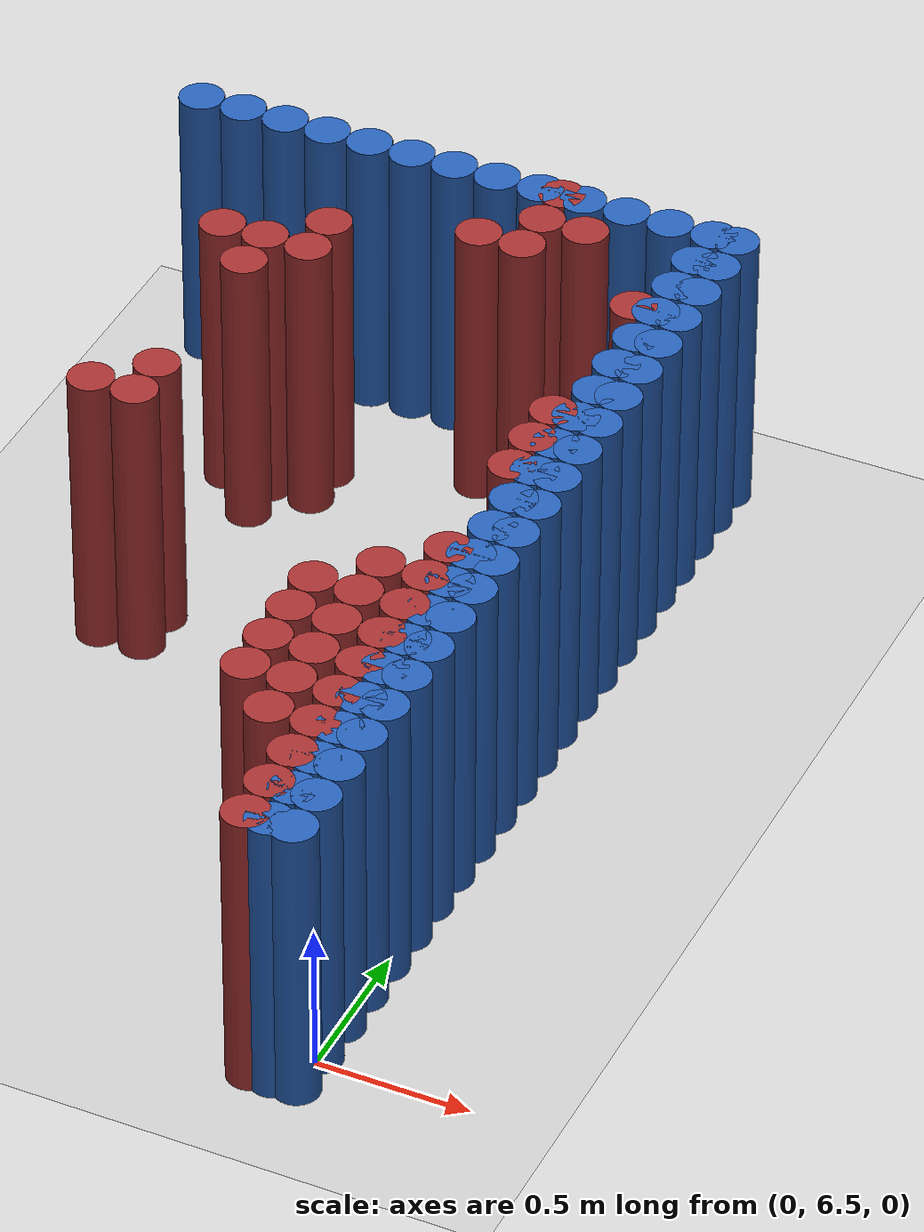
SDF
<sdf version="1.6">
 <world name="barn_world">
  <model name="ground_plane">
   <static>1</static>
   <link name="link">
    <collision name="collision">
     <geometry><plane><normal>0 0 1</normal><size>100 100</size></plane></geometry>
    </collision>
    <visual name="visual">
     <geometry><plane><normal>0 0 1</normal><size>100 100</size></plane></geometry>
     <material>
      <script><uri>file://media/materials/scripts/gazebo.material</uri><name>Gazebo/Grey</name></script>
     </material>
    </visual>
   </link>
  </model>
  <model name="unit_cylinder_215">
   <static>1</static>
   <pose>-1.5000 8.0250 0.5 0 0 0</pose>
   <link name="link">
    <collision name="collision">
     <geometry><cylinder><radius>0.075</radius><length>1</length></cylinder></geometry>
    </collision>
    <visual name="visual">
     <geometry><cylinder><radius>0.075</radius><length>1</length></cylinder></geometry>
     <material><ambient>0.648 0.192 0.192 1</ambient><diffuse>0.648 0.192 0.192 1</diffuse></material>
    </visual>
   </link>
  </model>
  <model name="unit_cylinder_216">
   <static>1</static>
   <pose>-1.5000 8.9250 0.5 0 0 0</pose>
   <link name="link">
    <collision name="collision">
     <geometry><cylinder><radius>0.075</radius><length>1</length></cylinder></geometry>
    </collision>
    <visual name="visual">
     <geometry><cylinder><radius>0.075</radius><length>1</length></cylinder></geometry>
     <material><ambient>0.648 0.192 0.192 1</ambient><diffuse>0.648 0.192 0.192 1</diffuse></material>
    </visual>
   </link>
  </model>
  <model name="unit_cylinder_217">
   <static>1</static>
   <pose>-1.3500 8.0250 0.5 0 0 0</pose>
   <link name="link">
    <collision name="collision">
     <geometry><cylinder><radius>0.075</radius><length>1</length></cylinder></geometry>
    </collision>
    <visual name="visual">
     <geometry><cylinder><radius>0.075</radius><length>1</length></cylinder></geometry>
     <material><ambient>0.648 0.192 0.192 1</ambient><diffuse>0.648 0.192 0.192 1</diffuse></material>
    </visual>
   </link>
  </model>
  <model name="unit_cylinder_218">
   <static>1</static>
   <pose>-1.3500 8.1750 0.5 0 0 0</pose>
   <link name="link">
    <collision name="collision">
     <geometry><cylinder><radius>0.075</radius><length>1</length></cylinder></geometry>
    </collision>
    <visual name="visual">
     <geometry><cylinder><radius>0.075</radius><length>1</length></cylinder></geometry>
     <material><ambient>0.648 0.192 0.192 1</ambient><diffuse>0.648 0.192 0.192 1</diffuse></material>
    </visual>
   </link>
  </model>
  <model name="unit_cylinder_219">
   <static>1</static>
   <pose>-1.3500 8.7750 0.5 0 0 0</pose>
   <link name="link">
    <collision name="collision">
     <geometry><cylinder><radius>0.075</radius><length>1</length></cylinder></geometry>
    </collision>
    <visual name="visual">
     <geometry><cylinder><radius>0.075</radius><length>1</length></cylinder></geometry>
     <material><ambient>0.648 0.192 0.192 1</ambient><diffuse>0.648 0.192 0.192 1</diffuse></material>
    </visual>
   </link>
  </model>
  <model name="unit_cylinder_220">
   <static>1</static>
   <pose>-1.3500 8.9250 0.5 0 0 0</pose>
   <link name="link">
    <collision name="collision">
     <geometry><cylinder><radius>0.075</radius><length>1</length></cylinder></geometry>
    </collision>
    <visual name="visual">
     <geometry><cylinder><radius>0.075</radius><length>1</length></cylinder></geometry>
     <material><ambient>0.648 0.192 0.192 1</ambient><diffuse>0.648 0.192 0.192 1</diffuse></material>
    </visual>
   </link>
  </model>
  <model name="unit_cylinder_221">
   <static>1</static>
   <pose>-1.2000 8.9250 0.5 0 0 0</pose>
   <link name="link">
    <collision name="collision">
     <geometry><cylinder><radius>0.075</radius><length>1</length></cylinder></geometry>
    </collision>
    <visual name="visual">
     <geometry><cylinder><radius>0.075</radius><length>1</length></cylinder></geometry>
     <material><ambient>0.648 0.192 0.192 1</ambient><diffuse>0.648 0.192 0.192 1</diffuse></material>
    </visual>
   </link>
  </model>
  <model name="unit_cylinder_222">
   <static>1</static>
   <pose>-1.2000 9.0750 0.5 0 0 0</pose>
   <link name="link">
    <collision name="collision">
     <geometry><cylinder><radius>0.075</radius><length>1</length></cylinder></geometry>
    </collision>
    <visual name="visual">
     <geometry><cylinder><radius>0.075</radius><length>1</length></cylinder></geometry>
     <material><ambient>0.648 0.192 0.192 1</ambient><diffuse>0.648 0.192 0.192 1</diffuse></material>
    </visual>
   </link>
  </model>
  <model name="unit_cylinder_223">
   <static>1</static>
   <pose>-0.7500 9.2250 0.5 0 0 0</pose>
   <link name="link">
    <collision name="collision">
     <geometry><cylinder><radius>0.075</radius><length>1</length></cylinder></geometry>
    </collision>
    <visual name="visual">
     <geometry><cylinder><radius>0.075</radius><length>1</length></cylinder></geometry>
     <material><ambient>0.648 0.192 0.192 1</ambient><diffuse>0.648 0.192 0.192 1</diffuse></material>
    </visual>
   </link>
  </model>
  <model name="unit_cylinder_224">
   <static>1</static>
   <pose>-0.6000 9.2250 0.5 0 0 0</pose>
   <link name="link">
    <collision name="collision">
     <geometry><cylinder><radius>0.075</radius><length>1</length></cylinder></geometry>
    </collision>
    <visual name="visual">
     <geometry><cylinder><radius>0.075</radius><length>1</length></cylinder></geometry>
     <material><ambient>0.648 0.192 0.192 1</ambient><diffuse>0.648 0.192 0.192 1</diffuse></material>
    </visual>
   </link>
  </model>
  <model name="unit_cylinder_225">
   <static>1</static>
   <pose>-0.6000 9.3750 0.5 0 0 0</pose>
   <link name="link">
    <collision name="collision">
     <geometry><cylinder><radius>0.075</radius><length>1</length></cylinder></geometry>
    </collision>
    <visual name="visual">
     <geometry><cylinder><radius>0.075</radius><length>1</length></cylinder></geometry>
     <material><ambient>0.648 0.192 0.192 1</ambient><diffuse>0.648 0.192 0.192 1</diffuse></material>
    </visual>
   </link>
  </model>
  <model name="unit_cylinder_226">
   <static>1</static>
   <pose>-0.6000 9.5250 0.5 0 0 0</pose>
   <link name="link">
    <collision name="collision">
     <geometry><cylinder><radius>0.075</radius><length>1</length></cylinder></geometry>
    </collision>
    <visual name="visual">
     <geometry><cylinder><radius>0.075</radius><length>1</length></cylinder></geometry>
     <material><ambient>0.648 0.192 0.192 1</ambient><diffuse>0.648 0.192 0.192 1</diffuse></material>
    </visual>
   </link>
  </model>
  <model name="unit_cylinder_227">
   <static>1</static>
   <pose>-0.4500 6.9750 0.5 0 0 0</pose>
   <link name="link">
    <collision name="collision">
     <geometry><cylinder><radius>0.075</radius><length>1</length></cylinder></geometry>
    </collision>
    <visual name="visual">
     <geometry><cylinder><radius>0.075</radius><length>1</length></cylinder></geometry>
     <material><ambient>0.648 0.192 0.192 1</ambient><diffuse>0.648 0.192 0.192 1</diffuse></material>
    </visual>
   </link>
  </model>
  <model name="unit_cylinder_228">
   <static>1</static>
   <pose>-0.4500 7.1250 0.5 0 0 0</pose>
   <link name="link">
    <collision name="collision">
     <geometry><cylinder><radius>0.075</radius><length>1</length></cylinder></geometry>
    </collision>
    <visual name="visual">
     <geometry><cylinder><radius>0.075</radius><length>1</length></cylinder></geometry>
     <material><ambient>0.648 0.192 0.192 1</ambient><diffuse>0.648 0.192 0.192 1</diffuse></material>
    </visual>
   </link>
  </model>
  <model name="unit_cylinder_229">
   <static>1</static>
   <pose>-0.4500 7.2750 0.5 0 0 0</pose>
   <link name="link">
    <collision name="collision">
     <geometry><cylinder><radius>0.075</radius><length>1</length></cylinder></geometry>
    </collision>
    <visual name="visual">
     <geometry><cylinder><radius>0.075</radius><length>1</length></cylinder></geometry>
     <material><ambient>0.648 0.192 0.192 1</ambient><diffuse>0.648 0.192 0.192 1</diffuse></material>
    </visual>
   </link>
  </model>
  <model name="unit_cylinder_230">
   <static>1</static>
   <pose>-0.4500 7.4250 0.5 0 0 0</pose>
   <link name="link">
    <collision name="collision">
     <geometry><cylinder><radius>0.075</radius><length>1</length></cylinder></geometry>
    </collision>
    <visual name="visual">
     <geometry><cylinder><radius>0.075</radius><length>1</length></cylinder></geometry>
     <material><ambient>0.648 0.192 0.192 1</ambient><diffuse>0.648 0.192 0.192 1</diffuse></material>
    </visual>
   </link>
  </model>
  <model name="unit_cylinder_231">
   <static>1</static>
   <pose>-0.4500 9.3750 0.5 0 0 0</pose>
   <link name="link">
    <collision name="collision">
     <geometry><cylinder><radius>0.075</radius><length>1</length></cylinder></geometry>
    </collision>
    <visual name="visual">
     <geometry><cylinder><radius>0.075</radius><length>1</length></cylinder></geometry>
     <material><ambient>0.648 0.192 0.192 1</ambient><diffuse>0.648 0.192 0.192 1</diffuse></material>
    </visual>
   </link>
  </model>
  <model name="unit_cylinder_232">
   <static>1</static>
   <pose>-0.3000 6.8250 0.5 0 0 0</pose>
   <link name="link">
    <collision name="collision">
     <geometry><cylinder><radius>0.075</radius><length>1</length></cylinder></geometry>
    </collision>
    <visual name="visual">
     <geometry><cylinder><radius>0.075</radius><length>1</length></cylinder></geometry>
     <material><ambient>0.648 0.192 0.192 1</ambient><diffuse>0.648 0.192 0.192 1</diffuse></material>
    </visual>
   </link>
  </model>
  <model name="unit_cylinder_233">
   <static>1</static>
   <pose>-0.3000 6.9750 0.5 0 0 0</pose>
   <link name="link">
    <collision name="collision">
     <geometry><cylinder><radius>0.075</radius><length>1</length></cylinder></geometry>
    </collision>
    <visual name="visual">
     <geometry><cylinder><radius>0.075</radius><length>1</length></cylinder></geometry>
     <material><ambient>0.648 0.192 0.192 1</ambient><diffuse>0.648 0.192 0.192 1</diffuse></material>
    </visual>
   </link>
  </model>
  <model name="unit_cylinder_234">
   <static>1</static>
   <pose>-0.3000 7.1250 0.5 0 0 0</pose>
   <link name="link">
    <collision name="collision">
     <geometry><cylinder><radius>0.075</radius><length>1</length></cylinder></geometry>
    </collision>
    <visual name="visual">
     <geometry><cylinder><radius>0.075</radius><length>1</length></cylinder></geometry>
     <material><ambient>0.648 0.192 0.192 1</ambient><diffuse>0.648 0.192 0.192 1</diffuse></material>
    </visual>
   </link>
  </model>
  <model name="unit_cylinder_235">
   <static>1</static>
   <pose>-0.3000 7.2750 0.5 0 0 0</pose>
   <link name="link">
    <collision name="collision">
     <geometry><cylinder><radius>0.075</radius><length>1</length></cylinder></geometry>
    </collision>
    <visual name="visual">
     <geometry><cylinder><radius>0.075</radius><length>1</length></cylinder></geometry>
     <material><ambient>0.648 0.192 0.192 1</ambient><diffuse>0.648 0.192 0.192 1</diffuse></material>
    </visual>
   </link>
  </model>
  <model name="unit_cylinder_236">
   <static>1</static>
   <pose>-0.3000 7.4250 0.5 0 0 0</pose>
   <link name="link">
    <collision name="collision">
     <geometry><cylinder><radius>0.075</radius><length>1</length></cylinder></geometry>
    </collision>
    <visual name="visual">
     <geometry><cylinder><radius>0.075</radius><length>1</length></cylinder></geometry>
     <material><ambient>0.648 0.192 0.192 1</ambient><diffuse>0.648 0.192 0.192 1</diffuse></material>
    </visual>
   </link>
  </model>
  <model name="unit_cylinder_237">
   <static>1</static>
   <pose>-0.3000 7.5750 0.5 0 0 0</pose>
   <link name="link">
    <collision name="collision">
     <geometry><cylinder><radius>0.075</radius><length>1</length></cylinder></geometry>
    </collision>
    <visual name="visual">
     <geometry><cylinder><radius>0.075</radius><length>1</length></cylinder></geometry>
     <material><ambient>0.648 0.192 0.192 1</ambient><diffuse>0.648 0.192 0.192 1</diffuse></material>
    </visual>
   </link>
  </model>
  <model name="unit_cylinder_240">
   <static>1</static>
   <pose>-0.1500 6.3750 0.5 0 0 0</pose>
   <link name="link">
    <collision name="collision">
     <geometry><cylinder><radius>0.075</radius><length>1</length></cylinder></geometry>
    </collision>
    <visual name="visual">
     <geometry><cylinder><radius>0.075</radius><length>1</length></cylinder></geometry>
     <material><ambient>0.648 0.192 0.192 1</ambient><diffuse>0.648 0.192 0.192 1</diffuse></material>
    </visual>
   </link>
  </model>
  <model name="unit_cylinder_241">
   <static>1</static>
   <pose>-0.1500 6.5250 0.5 0 0 0</pose>
   <link name="link">
    <collision name="collision">
     <geometry><cylinder><radius>0.075</radius><length>1</length></cylinder></geometry>
    </collision>
    <visual name="visual">
     <geometry><cylinder><radius>0.075</radius><length>1</length></cylinder></geometry>
     <material><ambient>0.648 0.192 0.192 1</ambient><diffuse>0.648 0.192 0.192 1</diffuse></material>
    </visual>
   </link>
  </model>
  <model name="unit_cylinder_242">
   <static>1</static>
   <pose>-0.1500 6.6750 0.5 0 0 0</pose>
   <link name="link">
    <collision name="collision">
     <geometry><cylinder><radius>0.075</radius><length>1</length></cylinder></geometry>
    </collision>
    <visual name="visual">
     <geometry><cylinder><radius>0.075</radius><length>1</length></cylinder></geometry>
     <material><ambient>0.648 0.192 0.192 1</ambient><diffuse>0.648 0.192 0.192 1</diffuse></material>
    </visual>
   </link>
  </model>
  <model name="unit_cylinder_243">
   <static>1</static>
   <pose>-0.1500 6.8250 0.5 0 0 0</pose>
   <link name="link">
    <collision name="collision">
     <geometry><cylinder><radius>0.075</radius><length>1</length></cylinder></geometry>
    </collision>
    <visual name="visual">
     <geometry><cylinder><radius>0.075</radius><length>1</length></cylinder></geometry>
     <material><ambient>0.648 0.192 0.192 1</ambient><diffuse>0.648 0.192 0.192 1</diffuse></material>
    </visual>
   </link>
  </model>
  <model name="unit_cylinder_244">
   <static>1</static>
   <pose>-0.1500 6.9750 0.5 0 0 0</pose>
   <link name="link">
    <collision name="collision">
     <geometry><cylinder><radius>0.075</radius><length>1</length></cylinder></geometry>
    </collision>
    <visual name="visual">
     <geometry><cylinder><radius>0.075</radius><length>1</length></cylinder></geometry>
     <material><ambient>0.648 0.192 0.192 1</ambient><diffuse>0.648 0.192 0.192 1</diffuse></material>
    </visual>
   </link>
  </model>
  <model name="unit_cylinder_245">
   <static>1</static>
   <pose>-0.1500 7.1250 0.5 0 0 0</pose>
   <link name="link">
    <collision name="collision">
     <geometry><cylinder><radius>0.075</radius><length>1</length></cylinder></geometry>
    </collision>
    <visual name="visual">
     <geometry><cylinder><radius>0.075</radius><length>1</length></cylinder></geometry>
     <material><ambient>0.648 0.192 0.192 1</ambient><diffuse>0.648 0.192 0.192 1</diffuse></material>
    </visual>
   </link>
  </model>
  <model name="unit_cylinder_246">
   <static>1</static>
   <pose>-0.1500 7.2750 0.5 0 0 0</pose>
   <link name="link">
    <collision name="collision">
     <geometry><cylinder><radius>0.075</radius><length>1</length></cylinder></geometry>
    </collision>
    <visual name="visual">
     <geometry><cylinder><radius>0.075</radius><length>1</length></cylinder></geometry>
     <material><ambient>0.648 0.192 0.192 1</ambient><diffuse>0.648 0.192 0.192 1</diffuse></material>
    </visual>
   </link>
  </model>
  <model name="unit_cylinder_247">
   <static>1</static>
   <pose>-0.1500 7.4250 0.5 0 0 0</pose>
   <link name="link">
    <collision name="collision">
     <geometry><cylinder><radius>0.075</radius><length>1</length></cylinder></geometry>
    </collision>
    <visual name="visual">
     <geometry><cylinder><radius>0.075</radius><length>1</length></cylinder></geometry>
     <material><ambient>0.648 0.192 0.192 1</ambient><diffuse>0.648 0.192 0.192 1</diffuse></material>
    </visual>
   </link>
  </model>
  <model name="unit_cylinder_248">
   <static>1</static>
   <pose>-0.1500 7.5750 0.5 0 0 0</pose>
   <link name="link">
    <collision name="collision">
     <geometry><cylinder><radius>0.075</radius><length>1</length></cylinder></geometry>
    </collision>
    <visual name="visual">
     <geometry><cylinder><radius>0.075</radius><length>1</length></cylinder></geometry>
     <material><ambient>0.648 0.192 0.192 1</ambient><diffuse>0.648 0.192 0.192 1</diffuse></material>
    </visual>
   </link>
  </model>
  <model name="unit_cylinder_249">
   <static>1</static>
   <pose>-0.1500 7.7250 0.5 0 0 0</pose>
   <link name="link">
    <collision name="collision">
     <geometry><cylinder><radius>0.075</radius><length>1</length></cylinder></geometry>
    </collision>
    <visual name="visual">
     <geometry><cylinder><radius>0.075</radius><length>1</length></cylinder></geometry>
     <material><ambient>0.648 0.192 0.192 1</ambient><diffuse>0.648 0.192 0.192 1</diffuse></material>
    </visual>
   </link>
  </model>
  <model name="unit_cylinder_250">
   <static>1</static>
   <pose>-0.1500 8.1750 0.5 0 0 0</pose>
   <link name="link">
    <collision name="collision">
     <geometry><cylinder><radius>0.075</radius><length>1</length></cylinder></geometry>
    </collision>
    <visual name="visual">
     <geometry><cylinder><radius>0.075</radius><length>1</length></cylinder></geometry>
     <material><ambient>0.648 0.192 0.192 1</ambient><diffuse>0.648 0.192 0.192 1</diffuse></material>
    </visual>
   </link>
  </model>
  <model name="unit_cylinder_251">
   <static>1</static>
   <pose>-0.1500 8.3250 0.5 0 0 0</pose>
   <link name="link">
    <collision name="collision">
     <geometry><cylinder><radius>0.075</radius><length>1</length></cylinder></geometry>
    </collision>
    <visual name="visual">
     <geometry><cylinder><radius>0.075</radius><length>1</length></cylinder></geometry>
     <material><ambient>0.648 0.192 0.192 1</ambient><diffuse>0.648 0.192 0.192 1</diffuse></material>
    </visual>
   </link>
  </model>
  <model name="unit_cylinder_252">
   <static>1</static>
   <pose>-0.1500 8.4750 0.5 0 0 0</pose>
   <link name="link">
    <collision name="collision">
     <geometry><cylinder><radius>0.075</radius><length>1</length></cylinder></geometry>
    </collision>
    <visual name="visual">
     <geometry><cylinder><radius>0.075</radius><length>1</length></cylinder></geometry>
     <material><ambient>0.648 0.192 0.192 1</ambient><diffuse>0.648 0.192 0.192 1</diffuse></material>
    </visual>
   </link>
  </model>
  <model name="unit_cylinder_253">
   <static>1</static>
   <pose>-0.1500 9.0750 0.5 0 0 0</pose>
   <link name="link">
    <collision name="collision">
     <geometry><cylinder><radius>0.075</radius><length>1</length></cylinder></geometry>
    </collision>
    <visual name="visual">
     <geometry><cylinder><radius>0.075</radius><length>1</length></cylinder></geometry>
     <material><ambient>0.648 0.192 0.192 1</ambient><diffuse>0.648 0.192 0.192 1</diffuse></material>
    </visual>
   </link>
  </model>
  <model name="unit_cylinder_262">
   <static>1</static>
   <pose>0.0000 6.3750 0.5 0 0 0</pose>
   <link name="link">
    <collision name="collision">
     <geometry><cylinder><radius>0.075</radius><length>1</length></cylinder></geometry>
    </collision>
    <visual name="visual">
     <geometry><cylinder><radius>0.075</radius><length>1</length></cylinder></geometry>
     <material><ambient>0.152 0.379 0.72 1</ambient><diffuse>0.152 0.379 0.72 1</diffuse></material>
    </visual>
   </link>
  </model>
  <model name="unit_cylinder_263">
   <static>1</static>
   <pose>0.0000 6.5250 0.5 0 0 0</pose>
   <link name="link">
    <collision name="collision">
     <geometry><cylinder><radius>0.075</radius><length>1</length></cylinder></geometry>
    </collision>
    <visual name="visual">
     <geometry><cylinder><radius>0.075</radius><length>1</length></cylinder></geometry>
     <material><ambient>0.152 0.379 0.72 1</ambient><diffuse>0.152 0.379 0.72 1</diffuse></material>
    </visual>
   </link>
  </model>
  <model name="unit_cylinder_264">
   <static>1</static>
   <pose>0.0000 6.6750 0.5 0 0 0</pose>
   <link name="link">
    <collision name="collision">
     <geometry><cylinder><radius>0.075</radius><length>1</length></cylinder></geometry>
    </collision>
    <visual name="visual">
     <geometry><cylinder><radius>0.075</radius><length>1</length></cylinder></geometry>
     <material><ambient>0.152 0.379 0.72 1</ambient><diffuse>0.152 0.379 0.72 1</diffuse></material>
    </visual>
   </link>
  </model>
  <model name="unit_cylinder_265">
   <static>1</static>
   <pose>0.0000 6.8250 0.5 0 0 0</pose>
   <link name="link">
    <collision name="collision">
     <geometry><cylinder><radius>0.075</radius><length>1</length></cylinder></geometry>
    </collision>
    <visual name="visual">
     <geometry><cylinder><radius>0.075</radius><length>1</length></cylinder></geometry>
     <material><ambient>0.152 0.379 0.72 1</ambient><diffuse>0.152 0.379 0.72 1</diffuse></material>
    </visual>
   </link>
  </model>
  <model name="unit_cylinder_266">
   <static>1</static>
   <pose>0.0000 6.9750 0.5 0 0 0</pose>
   <link name="link">
    <collision name="collision">
     <geometry><cylinder><radius>0.075</radius><length>1</length></cylinder></geometry>
    </collision>
    <visual name="visual">
     <geometry><cylinder><radius>0.075</radius><length>1</length></cylinder></geometry>
     <material><ambient>0.152 0.379 0.72 1</ambient><diffuse>0.152 0.379 0.72 1</diffuse></material>
    </visual>
   </link>
  </model>
  <model name="unit_cylinder_267">
   <static>1</static>
   <pose>0.0000 7.1250 0.5 0 0 0</pose>
   <link name="link">
    <collision name="collision">
     <geometry><cylinder><radius>0.075</radius><length>1</length></cylinder></geometry>
    </collision>
    <visual name="visual">
     <geometry><cylinder><radius>0.075</radius><length>1</length></cylinder></geometry>
     <material><ambient>0.152 0.379 0.72 1</ambient><diffuse>0.152 0.379 0.72 1</diffuse></material>
    </visual>
   </link>
  </model>
  <model name="unit_cylinder_268">
   <static>1</static>
   <pose>0.0000 7.2750 0.5 0 0 0</pose>
   <link name="link">
    <collision name="collision">
     <geometry><cylinder><radius>0.075</radius><length>1</length></cylinder></geometry>
    </collision>
    <visual name="visual">
     <geometry><cylinder><radius>0.075</radius><length>1</length></cylinder></geometry>
     <material><ambient>0.152 0.379 0.72 1</ambient><diffuse>0.152 0.379 0.72 1</diffuse></material>
    </visual>
   </link>
  </model>
  <model name="unit_cylinder_269">
   <static>1</static>
   <pose>0.0000 7.4250 0.5 0 0 0</pose>
   <link name="link">
    <collision name="collision">
     <geometry><cylinder><radius>0.075</radius><length>1</length></cylinder></geometry>
    </collision>
    <visual name="visual">
     <geometry><cylinder><radius>0.075</radius><length>1</length></cylinder></geometry>
     <material><ambient>0.152 0.379 0.72 1</ambient><diffuse>0.152 0.379 0.72 1</diffuse></material>
    </visual>
   </link>
  </model>
  <model name="unit_cylinder_270">
   <static>1</static>
   <pose>0.0000 7.5750 0.5 0 0 0</pose>
   <link name="link">
    <collision name="collision">
     <geometry><cylinder><radius>0.075</radius><length>1</length></cylinder></geometry>
    </collision>
    <visual name="visual">
     <geometry><cylinder><radius>0.075</radius><length>1</length></cylinder></geometry>
     <material><ambient>0.152 0.379 0.72 1</ambient><diffuse>0.152 0.379 0.72 1</diffuse></material>
    </visual>
   </link>
  </model>
  <model name="unit_cylinder_271">
   <static>1</static>
   <pose>0.0000 7.7250 0.5 0 0 0</pose>
   <link name="link">
    <collision name="collision">
     <geometry><cylinder><radius>0.075</radius><length>1</length></cylinder></geometry>
    </collision>
    <visual name="visual">
     <geometry><cylinder><radius>0.075</radius><length>1</length></cylinder></geometry>
     <material><ambient>0.152 0.379 0.72 1</ambient><diffuse>0.152 0.379 0.72 1</diffuse></material>
    </visual>
   </link>
  </model>
  <model name="unit_cylinder_272">
   <static>1</static>
   <pose>0.0000 7.8750 0.5 0 0 0</pose>
   <link name="link">
    <collision name="collision">
     <geometry><cylinder><radius>0.075</radius><length>1</length></cylinder></geometry>
    </collision>
    <visual name="visual">
     <geometry><cylinder><radius>0.075</radius><length>1</length></cylinder></geometry>
     <material><ambient>0.152 0.379 0.72 1</ambient><diffuse>0.152 0.379 0.72 1</diffuse></material>
    </visual>
   </link>
  </model>
  <model name="unit_cylinder_273">
   <static>1</static>
   <pose>0.0000 8.0250 0.5 0 0 0</pose>
   <link name="link">
    <collision name="collision">
     <geometry><cylinder><radius>0.075</radius><length>1</length></cylinder></geometry>
    </collision>
    <visual name="visual">
     <geometry><cylinder><radius>0.075</radius><length>1</length></cylinder></geometry>
     <material><ambient>0.152 0.379 0.72 1</ambient><diffuse>0.152 0.379 0.72 1</diffuse></material>
    </visual>
   </link>
  </model>
  <model name="unit_cylinder_274">
   <static>1</static>
   <pose>0.0000 8.1750 0.5 0 0 0</pose>
   <link name="link">
    <collision name="collision">
     <geometry><cylinder><radius>0.075</radius><length>1</length></cylinder></geometry>
    </collision>
    <visual name="visual">
     <geometry><cylinder><radius>0.075</radius><length>1</length></cylinder></geometry>
     <material><ambient>0.152 0.379 0.72 1</ambient><diffuse>0.152 0.379 0.72 1</diffuse></material>
    </visual>
   </link>
  </model>
  <model name="unit_cylinder_275">
   <static>1</static>
   <pose>0.0000 8.3250 0.5 0 0 0</pose>
   <link name="link">
    <collision name="collision">
     <geometry><cylinder><radius>0.075</radius><length>1</length></cylinder></geometry>
    </collision>
    <visual name="visual">
     <geometry><cylinder><radius>0.075</radius><length>1</length></cylinder></geometry>
     <material><ambient>0.152 0.379 0.72 1</ambient><diffuse>0.152 0.379 0.72 1</diffuse></material>
    </visual>
   </link>
  </model>
  <model name="unit_cylinder_276">
   <static>1</static>
   <pose>0.0000 8.4750 0.5 0 0 0</pose>
   <link name="link">
    <collision name="collision">
     <geometry><cylinder><radius>0.075</radius><length>1</length></cylinder></geometry>
    </collision>
    <visual name="visual">
     <geometry><cylinder><radius>0.075</radius><length>1</length></cylinder></geometry>
     <material><ambient>0.152 0.379 0.72 1</ambient><diffuse>0.152 0.379 0.72 1</diffuse></material>
    </visual>
   </link>
  </model>
  <model name="unit_cylinder_277">
   <static>1</static>
   <pose>0.0000 8.6250 0.5 0 0 0</pose>
   <link name="link">
    <collision name="collision">
     <geometry><cylinder><radius>0.075</radius><length>1</length></cylinder></geometry>
    </collision>
    <visual name="visual">
     <geometry><cylinder><radius>0.075</radius><length>1</length></cylinder></geometry>
     <material><ambient>0.152 0.379 0.72 1</ambient><diffuse>0.152 0.379 0.72 1</diffuse></material>
    </visual>
   </link>
  </model>
  <model name="unit_cylinder_278">
   <static>1</static>
   <pose>0.0000 8.7750 0.5 0 0 0</pose>
   <link name="link">
    <collision name="collision">
     <geometry><cylinder><radius>0.075</radius><length>1</length></cylinder></geometry>
    </collision>
    <visual name="visual">
     <geometry><cylinder><radius>0.075</radius><length>1</length></cylinder></geometry>
     <material><ambient>0.152 0.379 0.72 1</ambient><diffuse>0.152 0.379 0.72 1</diffuse></material>
    </visual>
   </link>
  </model>
  <model name="unit_cylinder_279">
   <static>1</static>
   <pose>0.0000 8.9250 0.5 0 0 0</pose>
   <link name="link">
    <collision name="collision">
     <geometry><cylinder><radius>0.075</radius><length>1</length></cylinder></geometry>
    </collision>
    <visual name="visual">
     <geometry><cylinder><radius>0.075</radius><length>1</length></cylinder></geometry>
     <material><ambient>0.152 0.379 0.72 1</ambient><diffuse>0.152 0.379 0.72 1</diffuse></material>
    </visual>
   </link>
  </model>
  <model name="unit_cylinder_280">
   <static>1</static>
   <pose>0.0000 9.0750 0.5 0 0 0</pose>
   <link name="link">
    <collision name="collision">
     <geometry><cylinder><radius>0.075</radius><length>1</length></cylinder></geometry>
    </collision>
    <visual name="visual">
     <geometry><cylinder><radius>0.075</radius><length>1</length></cylinder></geometry>
     <material><ambient>0.152 0.379 0.72 1</ambient><diffuse>0.152 0.379 0.72 1</diffuse></material>
    </visual>
   </link>
  </model>
  <model name="unit_cylinder_281">
   <static>1</static>
   <pose>0.0000 9.2250 0.5 0 0 0</pose>
   <link name="link">
    <collision name="collision">
     <geometry><cylinder><radius>0.075</radius><length>1</length></cylinder></geometry>
    </collision>
    <visual name="visual">
     <geometry><cylinder><radius>0.075</radius><length>1</length></cylinder></geometry>
     <material><ambient>0.152 0.379 0.72 1</ambient><diffuse>0.152 0.379 0.72 1</diffuse></material>
    </visual>
   </link>
  </model>
  <model name="unit_cylinder_282">
   <static>1</static>
   <pose>0.0000 9.3750 0.5 0 0 0</pose>
   <link name="link">
    <collision name="collision">
     <geometry><cylinder><radius>0.075</radius><length>1</length></cylinder></geometry>
    </collision>
    <visual name="visual">
     <geometry><cylinder><radius>0.075</radius><length>1</length></cylinder></geometry>
     <material><ambient>0.152 0.379 0.72 1</ambient><diffuse>0.152 0.379 0.72 1</diffuse></material>
    </visual>
   </link>
  </model>
  <model name="unit_cylinder_283">
   <static>1</static>
   <pose>0.0000 9.5250 0.5 0 0 0</pose>
   <link name="link">
    <collision name="collision">
     <geometry><cylinder><radius>0.075</radius><length>1</length></cylinder></geometry>
    </collision>
    <visual name="visual">
     <geometry><cylinder><radius>0.075</radius><length>1</length></cylinder></geometry>
     <material><ambient>0.152 0.379 0.72 1</ambient><diffuse>0.152 0.379 0.72 1</diffuse></material>
    </visual>
   </link>
  </model>
  <model name="unit_cylinder_284">
   <static>1</static>
   <pose>-0.0750 9.5250 0.5 0 0 0</pose>
   <link name="link">
    <collision name="collision">
     <geometry><cylinder><radius>0.075</radius><length>1</length></cylinder></geometry>
    </collision>
    <visual name="visual">
     <geometry><cylinder><radius>0.075</radius><length>1</length></cylinder></geometry>
     <material><ambient>0.152 0.379 0.72 1</ambient><diffuse>0.152 0.379 0.72 1</diffuse></material>
    </visual>
   </link>
  </model>
  <model name="unit_cylinder_285">
   <static>1</static>
   <pose>-0.2250 9.5250 0.5 0 0 0</pose>
   <link name="link">
    <collision name="collision">
     <geometry><cylinder><radius>0.075</radius><length>1</length></cylinder></geometry>
    </collision>
    <visual name="visual">
     <geometry><cylinder><radius>0.075</radius><length>1</length></cylinder></geometry>
     <material><ambient>0.152 0.379 0.72 1</ambient><diffuse>0.152 0.379 0.72 1</diffuse></material>
    </visual>
   </link>
  </model>
  <model name="unit_cylinder_286">
   <static>1</static>
   <pose>-0.3750 9.5250 0.5 0 0 0</pose>
   <link name="link">
    <collision name="collision">
     <geometry><cylinder><radius>0.075</radius><length>1</length></cylinder></geometry>
    </collision>
    <visual name="visual">
     <geometry><cylinder><radius>0.075</radius><length>1</length></cylinder></geometry>
     <material><ambient>0.152 0.379 0.72 1</ambient><diffuse>0.152 0.379 0.72 1</diffuse></material>
    </visual>
   </link>
  </model>
  <model name="unit_cylinder_287">
   <static>1</static>
   <pose>-0.5250 9.5250 0.5 0 0 0</pose>
   <link name="link">
    <collision name="collision">
     <geometry><cylinder><radius>0.075</radius><length>1</length></cylinder></geometry>
    </collision>
    <visual name="visual">
     <geometry><cylinder><radius>0.075</radius><length>1</length></cylinder></geometry>
     <material><ambient>0.152 0.379 0.72 1</ambient><diffuse>0.152 0.379 0.72 1</diffuse></material>
    </visual>
   </link>
  </model>
  <model name="unit_cylinder_288">
   <static>1</static>
   <pose>-0.6750 9.5250 0.5 0 0 0</pose>
   <link name="link">
    <collision name="collision">
     <geometry><cylinder><radius>0.075</radius><length>1</length></cylinder></geometry>
    </collision>
    <visual name="visual">
     <geometry><cylinder><radius>0.075</radius><length>1</length></cylinder></geometry>
     <material><ambient>0.152 0.379 0.72 1</ambient><diffuse>0.152 0.379 0.72 1</diffuse></material>
    </visual>
   </link>
  </model>
  <model name="unit_cylinder_289">
   <static>1</static>
   <pose>-0.8250 9.5250 0.5 0 0 0</pose>
   <link name="link">
    <collision name="collision">
     <geometry><cylinder><radius>0.075</radius><length>1</length></cylinder></geometry>
    </collision>
    <visual name="visual">
     <geometry><cylinder><radius>0.075</radius><length>1</length></cylinder></geometry>
     <material><ambient>0.152 0.379 0.72 1</ambient><diffuse>0.152 0.379 0.72 1</diffuse></material>
    </visual>
   </link>
  </model>
  <model name="unit_cylinder_290">
   <static>1</static>
   <pose>-0.9750 9.5250 0.5 0 0 0</pose>
   <link name="link">
    <collision name="collision">
     <geometry><cylinder><radius>0.075</radius><length>1</length></cylinder></geometry>
    </collision>
    <visual name="visual">
     <geometry><cylinder><radius>0.075</radius><length>1</length></cylinder></geometry>
     <material><ambient>0.152 0.379 0.72 1</ambient><diffuse>0.152 0.379 0.72 1</diffuse></material>
    </visual>
   </link>
  </model>
  <model name="unit_cylinder_291">
   <static>1</static>
   <pose>-1.1250 9.5250 0.5 0 0 0</pose>
   <link name="link">
    <collision name="collision">
     <geometry><cylinder><radius>0.075</radius><length>1</length></cylinder></geometry>
    </collision>
    <visual name="visual">
     <geometry><cylinder><radius>0.075</radius><length>1</length></cylinder></geometry>
     <material><ambient>0.152 0.379 0.72 1</ambient><diffuse>0.152 0.379 0.72 1</diffuse></material>
    </visual>
   </link>
  </model>
  <model name="unit_cylinder_292">
   <static>1</static>
   <pose>-1.2750 9.5250 0.5 0 0 0</pose>
   <link name="link">
    <collision name="collision">
     <geometry><cylinder><radius>0.075</radius><length>1</length></cylinder></geometry>
    </collision>
    <visual name="visual">
     <geometry><cylinder><radius>0.075</radius><length>1</length></cylinder></geometry>
     <material><ambient>0.152 0.379 0.72 1</ambient><diffuse>0.152 0.379 0.72 1</diffuse></material>
    </visual>
   </link>
  </model>
  <model name="unit_cylinder_293">
   <static>1</static>
   <pose>-1.4250 9.5250 0.5 0 0 0</pose>
   <link name="link">
    <collision name="collision">
     <geometry><cylinder><radius>0.075</radius><length>1</length></cylinder></geometry>
    </collision>
    <visual name="visual">
     <geometry><cylinder><radius>0.075</radius><length>1</length></cylinder></geometry>
     <material><ambient>0.152 0.379 0.72 1</ambient><diffuse>0.152 0.379 0.72 1</diffuse></material>
    </visual>
   </link>
  </model>
  <model name="unit_cylinder_294">
   <static>1</static>
   <pose>-1.5750 9.5250 0.5 0 0 0</pose>
   <link name="link">
    <collision name="collision">
     <geometry><cylinder><radius>0.075</radius><length>1</length></cylinder></geometry>
    </collision>
    <visual name="visual">
     <geometry><cylinder><radius>0.075</radius><length>1</length></cylinder></geometry>
     <material><ambient>0.152 0.379 0.72 1</ambient><diffuse>0.152 0.379 0.72 1</diffuse></material>
    </visual>
   </link>
  </model>
  <model name="unit_cylinder_295">
   <static>1</static>
   <pose>-1.7250 9.5250 0.5 0 0 0</pose>
   <link name="link">
    <collision name="collision">
     <geometry><cylinder><radius>0.075</radius><length>1</length></cylinder></geometry>
    </collision>
    <visual name="visual">
     <geometry><cylinder><radius>0.075</radius><length>1</length></cylinder></geometry>
     <material><ambient>0.152 0.379 0.72 1</ambient><diffuse>0.152 0.379 0.72 1</diffuse></material>
    </visual>
   </link>
  </model>
  <model name="unit_cylinder_296">
   <static>1</static>
   <pose>-1.8750 9.5250 0.5 0 0 0</pose>
   <link name="link">
    <collision name="collision">
     <geometry><cylinder><radius>0.075</radius><length>1</length></cylinder></geometry>
    </collision>
    <visual name="visual">
     <geometry><cylinder><radius>0.075</radius><length>1</length></cylinder></geometry>
     <material><ambient>0.152 0.379 0.72 1</ambient><diffuse>0.152 0.379 0.72 1</diffuse></material>
    </visual>
   </link>
  </model>
  <model name="unit_cylinder_330">
   <static>1</static>
   <pose>-0.0750 6.3750 0.5 0 0 0</pose>
   <link name="link">
    <collision name="collision">
     <geometry><cylinder><radius>0.075</radius><length>1</length></cylinder></geometry>
    </collision>
    <visual name="visual">
     <geometry><cylinder><radius>0.075</radius><length>1</length></cylinder></geometry>
     <material><ambient>0.152 0.379 0.72 1</ambient><diffuse>0.152 0.379 0.72 1</diffuse></material>
    </visual>
   </link>
  </model>
  <model name="unit_cylinder_332">
   <static>1</static>
   <pose>-0.0750 6.5250 0.5 0 0 0</pose>
   <link name="link">
    <collision name="collision">
     <geometry><cylinder><radius>0.075</radius><length>1</length></cylinder></geometry>
    </collision>
    <visual name="visual">
     <geometry><cylinder><radius>0.075</radius><length>1</length></cylinder></geometry>
     <material><ambient>0.152 0.379 0.72 1</ambient><diffuse>0.152 0.379 0.72 1</diffuse></material>
    </visual>
   </link>
  </model>
  <model name="unit_cylinder_334">
   <static>1</static>
   <pose>-0.0750 6.6750 0.5 0 0 0</pose>
   <link name="link">
    <collision name="collision">
     <geometry><cylinder><radius>0.075</radius><length>1</length></cylinder></geometry>
    </collision>
    <visual name="visual">
     <geometry><cylinder><radius>0.075</radius><length>1</length></cylinder></geometry>
     <material><ambient>0.152 0.379 0.72 1</ambient><diffuse>0.152 0.379 0.72 1</diffuse></material>
    </visual>
   </link>
  </model>
  <model name="unit_cylinder_336">
   <static>1</static>
   <pose>-0.0750 6.8250 0.5 0 0 0</pose>
   <link name="link">
    <collision name="collision">
     <geometry><cylinder><radius>0.075</radius><length>1</length></cylinder></geometry>
    </collision>
    <visual name="visual">
     <geometry><cylinder><radius>0.075</radius><length>1</length></cylinder></geometry>
     <material><ambient>0.152 0.379 0.72 1</ambient><diffuse>0.152 0.379 0.72 1</diffuse></material>
    </visual>
   </link>
  </model>
  <model name="unit_cylinder_338">
   <static>1</static>
   <pose>-0.0750 6.9750 0.5 0 0 0</pose>
   <link name="link">
    <collision name="collision">
     <geometry><cylinder><radius>0.075</radius><length>1</length></cylinder></geometry>
    </collision>
    <visual name="visual">
     <geometry><cylinder><radius>0.075</radius><length>1</length></cylinder></geometry>
     <material><ambient>0.152 0.379 0.72 1</ambient><diffuse>0.152 0.379 0.72 1</diffuse></material>
    </visual>
   </link>
  </model>
  <model name="unit_cylinder_340">
   <static>1</static>
   <pose>-0.0750 7.1250 0.5 0 0 0</pose>
   <link name="link">
    <collision name="collision">
     <geometry><cylinder><radius>0.075</radius><length>1</length></cylinder></geometry>
    </collision>
    <visual name="visual">
     <geometry><cylinder><radius>0.075</radius><length>1</length></cylinder></geometry>
     <material><ambient>0.152 0.379 0.72 1</ambient><diffuse>0.152 0.379 0.72 1</diffuse></material>
    </visual>
   </link>
  </model>
  <model name="unit_cylinder_342">
   <static>1</static>
   <pose>-0.0750 7.2750 0.5 0 0 0</pose>
   <link name="link">
    <collision name="collision">
     <geometry><cylinder><radius>0.075</radius><length>1</length></cylinder></geometry>
    </collision>
    <visual name="visual">
     <geometry><cylinder><radius>0.075</radius><length>1</length></cylinder></geometry>
     <material><ambient>0.152 0.379 0.72 1</ambient><diffuse>0.152 0.379 0.72 1</diffuse></material>
    </visual>
   </link>
  </model>
  <model name="unit_cylinder_344">
   <static>1</static>
   <pose>-0.0750 7.4250 0.5 0 0 0</pose>
   <link name="link">
    <collision name="collision">
     <geometry><cylinder><radius>0.075</radius><length>1</length></cylinder></geometry>
    </collision>
    <visual name="visual">
     <geometry><cylinder><radius>0.075</radius><length>1</length></cylinder></geometry>
     <material><ambient>0.152 0.379 0.72 1</ambient><diffuse>0.152 0.379 0.72 1</diffuse></material>
    </visual>
   </link>
  </model>
  <model name="unit_cylinder_346">
   <static>1</static>
   <pose>-0.0750 7.5750 0.5 0 0 0</pose>
   <link name="link">
    <collision name="collision">
     <geometry><cylinder><radius>0.075</radius><length>1</length></cylinder></geometry>
    </collision>
    <visual name="visual">
     <geometry><cylinder><radius>0.075</radius><length>1</length></cylinder></geometry>
     <material><ambient>0.152 0.379 0.72 1</ambient><diffuse>0.152 0.379 0.72 1</diffuse></material>
    </visual>
   </link>
  </model>
  <model name="unit_cylinder_348">
   <static>1</static>
   <pose>-0.0750 7.7250 0.5 0 0 0</pose>
   <link name="link">
    <collision name="collision">
     <geometry><cylinder><radius>0.075</radius><length>1</length></cylinder></geometry>
    </collision>
    <visual name="visual">
     <geometry><cylinder><radius>0.075</radius><length>1</length></cylinder></geometry>
     <material><ambient>0.152 0.379 0.72 1</ambient><diffuse>0.152 0.379 0.72 1</diffuse></material>
    </visual>
   </link>
  </model>
  <model name="unit_cylinder_350">
   <static>1</static>
   <pose>-0.0750 7.8750 0.5 0 0 0</pose>
   <link name="link">
    <collision name="collision">
     <geometry><cylinder><radius>0.075</radius><length>1</length></cylinder></geometry>
    </collision>
    <visual name="visual">
     <geometry><cylinder><radius>0.075</radius><length>1</length></cylinder></geometry>
     <material><ambient>0.152 0.379 0.72 1</ambient><diffuse>0.152 0.379 0.72 1</diffuse></material>
    </visual>
   </link>
  </model>
  <model name="unit_cylinder_352">
   <static>1</static>
   <pose>-0.0750 8.0250 0.5 0 0 0</pose>
   <link name="link">
    <collision name="collision">
     <geometry><cylinder><radius>0.075</radius><length>1</length></cylinder></geometry>
    </collision>
    <visual name="visual">
     <geometry><cylinder><radius>0.075</radius><length>1</length></cylinder></geometry>
     <material><ambient>0.152 0.379 0.72 1</ambient><diffuse>0.152 0.379 0.72 1</diffuse></material>
    </visual>
   </link>
  </model>
  <model name="unit_cylinder_354">
   <static>1</static>
   <pose>-0.0750 8.1750 0.5 0 0 0</pose>
   <link name="link">
    <collision name="collision">
     <geometry><cylinder><radius>0.075</radius><length>1</length></cylinder></geometry>
    </collision>
    <visual name="visual">
     <geometry><cylinder><radius>0.075</radius><length>1</length></cylinder></geometry>
     <material><ambient>0.152 0.379 0.72 1</ambient><diffuse>0.152 0.379 0.72 1</diffuse></material>
    </visual>
   </link>
  </model>
  <model name="unit_cylinder_356">
   <static>1</static>
   <pose>-0.0750 8.3250 0.5 0 0 0</pose>
   <link name="link">
    <collision name="collision">
     <geometry><cylinder><radius>0.075</radius><length>1</length></cylinder></geometry>
    </collision>
    <visual name="visual">
     <geometry><cylinder><radius>0.075</radius><length>1</length></cylinder></geometry>
     <material><ambient>0.152 0.379 0.72 1</ambient><diffuse>0.152 0.379 0.72 1</diffuse></material>
    </visual>
   </link>
  </model>
  <model name="unit_cylinder_358">
   <static>1</static>
   <pose>-0.0750 8.4750 0.5 0 0 0</pose>
   <link name="link">
    <collision name="collision">
     <geometry><cylinder><radius>0.075</radius><length>1</length></cylinder></geometry>
    </collision>
    <visual name="visual">
     <geometry><cylinder><radius>0.075</radius><length>1</length></cylinder></geometry>
     <material><ambient>0.152 0.379 0.72 1</ambient><diffuse>0.152 0.379 0.72 1</diffuse></material>
    </visual>
   </link>
  </model>
  <model name="unit_cylinder_360">
   <static>1</static>
   <pose>-0.0750 8.6250 0.5 0 0 0</pose>
   <link name="link">
    <collision name="collision">
     <geometry><cylinder><radius>0.075</radius><length>1</length></cylinder></geometry>
    </collision>
    <visual name="visual">
     <geometry><cylinder><radius>0.075</radius><length>1</length></cylinder></geometry>
     <material><ambient>0.152 0.379 0.72 1</ambient><diffuse>0.152 0.379 0.72 1</diffuse></material>
    </visual>
   </link>
  </model>
  <model name="unit_cylinder_362">
   <static>1</static>
   <pose>-0.0750 8.7750 0.5 0 0 0</pose>
   <link name="link">
    <collision name="collision">
     <geometry><cylinder><radius>0.075</radius><length>1</length></cylinder></geometry>
    </collision>
    <visual name="visual">
     <geometry><cylinder><radius>0.075</radius><length>1</length></cylinder></geometry>
     <material><ambient>0.152 0.379 0.72 1</ambient><diffuse>0.152 0.379 0.72 1</diffuse></material>
    </visual>
   </link>
  </model>
  <model name="unit_cylinder_364">
   <static>1</static>
   <pose>-0.0750 8.9250 0.5 0 0 0</pose>
   <link name="link">
    <collision name="collision">
     <geometry><cylinder><radius>0.075</radius><length>1</length></cylinder></geometry>
    </collision>
    <visual name="visual">
     <geometry><cylinder><radius>0.075</radius><length>1</length></cylinder></geometry>
     <material><ambient>0.152 0.379 0.72 1</ambient><diffuse>0.152 0.379 0.72 1</diffuse></material>
    </visual>
   </link>
  </model>
  <model name="unit_cylinder_366">
   <static>1</static>
   <pose>-0.0750 9.0750 0.5 0 0 0</pose>
   <link name="link">
    <collision name="collision">
     <geometry><cylinder><radius>0.075</radius><length>1</length></cylinder></geometry>
    </collision>
    <visual name="visual">
     <geometry><cylinder><radius>0.075</radius><length>1</length></cylinder></geometry>
     <material><ambient>0.152 0.379 0.72 1</ambient><diffuse>0.152 0.379 0.72 1</diffuse></material>
    </visual>
   </link>
  </model>
  <model name="unit_cylinder_368">
   <static>1</static>
   <pose>-0.0750 9.2250 0.5 0 0 0</pose>
   <link name="link">
    <collision name="collision">
     <geometry><cylinder><radius>0.075</radius><length>1</length></cylinder></geometry>
    </collision>
    <visual name="visual">
     <geometry><cylinder><radius>0.075</radius><length>1</length></cylinder></geometry>
     <material><ambient>0.152 0.379 0.72 1</ambient><diffuse>0.152 0.379 0.72 1</diffuse></material>
    </visual>
   </link>
  </model>
  <model name="unit_cylinder_370">
   <static>1</static>
   <pose>-0.0750 9.3750 0.5 0 0 0</pose>
   <link name="link">
    <collision name="collision">
     <geometry><cylinder><radius>0.075</radius><length>1</length></cylinder></geometry>
    </collision>
    <visual name="visual">
     <geometry><cylinder><radius>0.075</radius><length>1</length></cylinder></geometry>
     <material><ambient>0.152 0.379 0.72 1</ambient><diffuse>0.152 0.379 0.72 1</diffuse></material>
    </visual>
   </link>
  </model>
 </world>
</sdf>
